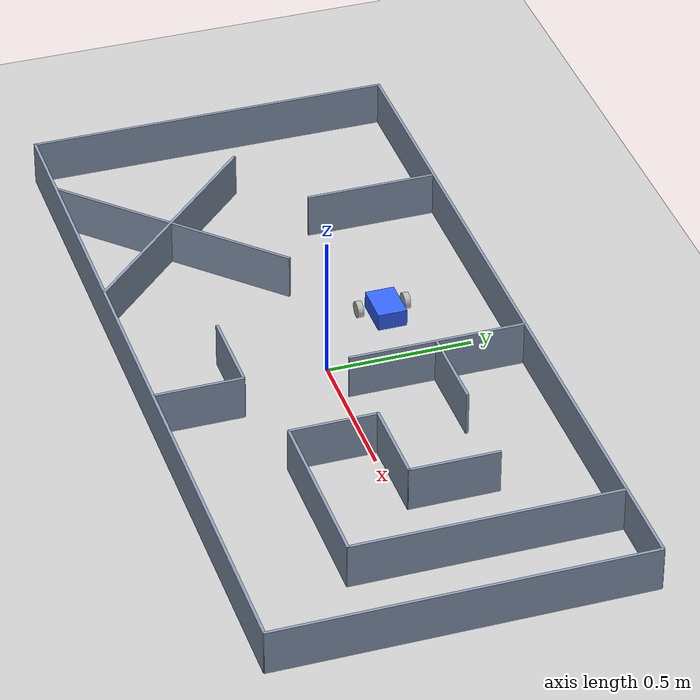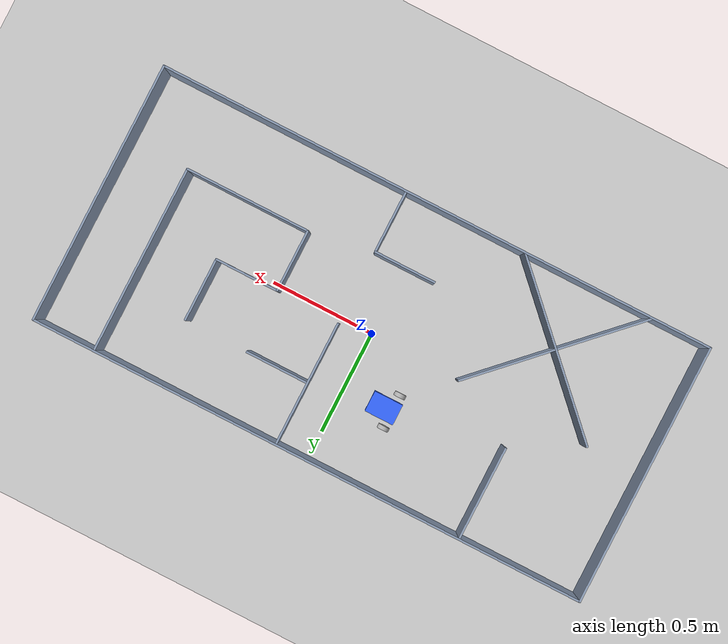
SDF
<sdf version="1.6">
  <world name="map_260905">
    <plugin filename="gz-sim-physics-system" name="gz::sim::systems::Physics" />
    <plugin filename="gz-sim-user-commands-system" name="gz::sim::systems::UserCommands" />
    <plugin filename="gz-sim-scene-broadcaster-system" name="gz::sim::systems::SceneBroadcaster" />
    <plugin filename="gz-sim-sensors-system" name="gz::sim::systems::Sensors">
      <render_engine>ogre2</render_engine>
    </plugin>
    <plugin filename="gz-sim-imu-system" name="gz::sim::systems::Imu" />

    <light type="directional" name="sun">
      <cast_shadows>false</cast_shadows>
      <pose>0 0 10 0 0 0</pose>
      <diffuse>0.9 0.9 0.9 1</diffuse>
      <specular>0.2 0.2 0.2 1</specular>
      <direction>-0.4 0.2 -0.9</direction>
    </light>

    <model name="ground_plane">
      <static>true</static>
      <link name="link">
        <collision name="collision">
          <geometry><plane><normal>0 0 1</normal><size>100 100</size></plane></geometry>
        </collision>
        <visual name="visual">
          <geometry><plane><normal>0 0 1</normal><size>100 100</size></plane></geometry>
          <material>
            <ambient>0.8 0.8 0.8 1</ambient><diffuse>0.8 0.8 0.8 1</diffuse>
            <specular>0.8 0.8 0.8 1</specular>
          </material>
        </visual>
      </link>
    </model>

    <model name="track_260905">
      <static>true</static>
      <pose>0 0 0 0 0 0</pose>
      <link name="link">
        <collision name="wall_00_col">
          <pose>-1.35250 0.00000 0.07750 0 0 0.0000000</pose>
          <geometry><box><size>0.01000 1.26000 0.15500</size></box></geometry>
          <surface><friction><ode><mu>0.9</mu><mu2>0.9</mu2></ode></friction></surface>
        </collision>
        <visual name="wall_00_vis">
          <pose>-1.35250 0.00000 0.07750 0 0 0.0000000</pose>
          <geometry><box><size>0.01000 1.26000 0.15500</size></box></geometry>
          <material>
            <ambient>0.30 0.35 0.45 1</ambient>
            <diffuse>0.55 0.62 0.72 1</diffuse>
            <specular>0.1 0.1 0.1 1</specular>
          </material>
        </visual>
        <collision name="wall_01_col">
          <pose>1.35250 0.00000 0.07750 0 0 0.0000000</pose>
          <geometry><box><size>0.01000 1.26000 0.15500</size></box></geometry>
          <surface><friction><ode><mu>0.9</mu><mu2>0.9</mu2></ode></friction></surface>
        </collision>
        <visual name="wall_01_vis">
          <pose>1.35250 0.00000 0.07750 0 0 0.0000000</pose>
          <geometry><box><size>0.01000 1.26000 0.15500</size></box></geometry>
          <material>
            <ambient>0.30 0.35 0.45 1</ambient>
            <diffuse>0.55 0.62 0.72 1</diffuse>
            <specular>0.1 0.1 0.1 1</specular>
          </material>
        </visual>
        <collision name="wall_02_col">
          <pose>0.00000 -0.62750 0.07750 0 0 0.0000000</pose>
          <geometry><box><size>2.71000 0.01000 0.15500</size></box></geometry>
          <surface><friction><ode><mu>0.9</mu><mu2>0.9</mu2></ode></friction></surface>
        </collision>
        <visual name="wall_02_vis">
          <pose>0.00000 -0.62750 0.07750 0 0 0.0000000</pose>
          <geometry><box><size>2.71000 0.01000 0.15500</size></box></geometry>
          <material>
            <ambient>0.30 0.35 0.45 1</ambient>
            <diffuse>0.55 0.62 0.72 1</diffuse>
            <specular>0.1 0.1 0.1 1</specular>
          </material>
        </visual>
        <collision name="wall_03_col">
          <pose>0.00000 0.62750 0.07750 0 0 0.0000000</pose>
          <geometry><box><size>2.71000 0.01000 0.15500</size></box></geometry>
          <surface><friction><ode><mu>0.9</mu><mu2>0.9</mu2></ode></friction></surface>
        </collision>
        <visual name="wall_03_vis">
          <pose>0.00000 0.62750 0.07750 0 0 0.0000000</pose>
          <geometry><box><size>2.71000 0.01000 0.15500</size></box></geometry>
          <material>
            <ambient>0.30 0.35 0.45 1</ambient>
            <diffuse>0.55 0.62 0.72 1</diffuse>
            <specular>0.1 0.1 0.1 1</specular>
          </material>
        </visual>
        <collision name="wall_04_col">
          <pose>-0.75435 0.39995 0.07750 0 0 0.0000000</pose>
          <geometry><box><size>0.01000 0.45000 0.15500</size></box></geometry>
          <surface><friction><ode><mu>0.9</mu><mu2>0.9</mu2></ode></friction></surface>
        </collision>
        <visual name="wall_04_vis">
          <pose>-0.75435 0.39995 0.07750 0 0 0.0000000</pose>
          <geometry><box><size>0.01000 0.45000 0.15500</size></box></geometry>
          <material>
            <ambient>0.30 0.35 0.45 1</ambient>
            <diffuse>0.55 0.62 0.72 1</diffuse>
            <specular>0.1 0.1 0.1 1</specular>
          </material>
        </visual>
        <collision name="wall_05_col">
          <pose>0.00495 -0.32745 0.07750 0 0 0.0000000</pose>
          <geometry><box><size>0.30000 0.01000 0.15500</size></box></geometry>
          <surface><friction><ode><mu>0.9</mu><mu2>0.9</mu2></ode></friction></surface>
        </collision>
        <visual name="wall_05_vis">
          <pose>0.00495 -0.32745 0.07750 0 0 0.0000000</pose>
          <geometry><box><size>0.30000 0.01000 0.15500</size></box></geometry>
          <material>
            <ambient>0.30 0.35 0.45 1</ambient>
            <diffuse>0.55 0.62 0.72 1</diffuse>
            <specular>0.1 0.1 0.1 1</specular>
          </material>
        </visual>
        <collision name="wall_06_col">
          <pose>0.15245 -0.47495 0.07750 0 0 0.0000000</pose>
          <geometry><box><size>0.01000 0.30000 0.15500</size></box></geometry>
          <surface><friction><ode><mu>0.9</mu><mu2>0.9</mu2></ode></friction></surface>
        </collision>
        <visual name="wall_06_vis">
          <pose>0.15245 -0.47495 0.07750 0 0 0.0000000</pose>
          <geometry><box><size>0.01000 0.30000 0.15500</size></box></geometry>
          <material>
            <ambient>0.30 0.35 0.45 1</ambient>
            <diffuse>0.55 0.62 0.72 1</diffuse>
            <specular>0.1 0.1 0.1 1</specular>
          </material>
        </visual>
        <collision name="wall_07_col">
          <pose>0.15245 0.32495 0.07750 0 0 0.0000000</pose>
          <geometry><box><size>0.01000 0.60000 0.15500</size></box></geometry>
          <surface><friction><ode><mu>0.9</mu><mu2>0.9</mu2></ode></friction></surface>
        </collision>
        <visual name="wall_07_vis">
          <pose>0.15245 0.32495 0.07750 0 0 0.0000000</pose>
          <geometry><box><size>0.01000 0.60000 0.15500</size></box></geometry>
          <material>
            <ambient>0.30 0.35 0.45 1</ambient>
            <diffuse>0.55 0.62 0.72 1</diffuse>
            <specular>0.1 0.1 0.1 1</specular>
          </material>
        </visual>
        <collision name="wall_08_col">
          <pose>0.30495 0.32245 0.07750 0 0 0.0000000</pose>
          <geometry><box><size>0.30000 0.01000 0.15500</size></box></geometry>
          <surface><friction><ode><mu>0.9</mu><mu2>0.9</mu2></ode></friction></surface>
        </collision>
        <visual name="wall_08_vis">
          <pose>0.30495 0.32245 0.07750 0 0 0.0000000</pose>
          <geometry><box><size>0.30000 0.01000 0.15500</size></box></geometry>
          <material>
            <ambient>0.30 0.35 0.45 1</ambient>
            <diffuse>0.55 0.62 0.72 1</diffuse>
            <specular>0.1 0.1 0.1 1</specular>
          </material>
        </visual>
        <collision name="wall_09_col">
          <pose>0.45745 -0.12500 0.07750 0 0 0.0000000</pose>
          <geometry><box><size>0.01000 0.29990 0.15500</size></box></geometry>
          <surface><friction><ode><mu>0.9</mu><mu2>0.9</mu2></ode></friction></surface>
        </collision>
        <visual name="wall_09_vis">
          <pose>0.45745 -0.12500 0.07750 0 0 0.0000000</pose>
          <geometry><box><size>0.01000 0.29990 0.15500</size></box></geometry>
          <material>
            <ambient>0.30 0.35 0.45 1</ambient>
            <diffuse>0.55 0.62 0.72 1</diffuse>
            <specular>0.1 0.1 0.1 1</specular>
          </material>
        </visual>
        <collision name="wall_10_col">
          <pose>0.60750 0.02245 0.07750 0 0 0.0000000</pose>
          <geometry><box><size>0.30510 0.01000 0.15500</size></box></geometry>
          <surface><friction><ode><mu>0.9</mu><mu2>0.9</mu2></ode></friction></surface>
        </collision>
        <visual name="wall_10_vis">
          <pose>0.60750 0.02245 0.07750 0 0 0.0000000</pose>
          <geometry><box><size>0.30510 0.01000 0.15500</size></box></geometry>
          <material>
            <ambient>0.30 0.35 0.45 1</ambient>
            <diffuse>0.55 0.62 0.72 1</diffuse>
            <specular>0.1 0.1 0.1 1</specular>
          </material>
        </visual>
        <collision name="wall_11_col">
          <pose>0.75500 -0.27245 0.07750 0 0 0.0000000</pose>
          <geometry><box><size>0.60010 0.01000 0.15500</size></box></geometry>
          <surface><friction><ode><mu>0.9</mu><mu2>0.9</mu2></ode></friction></surface>
        </collision>
        <visual name="wall_11_vis">
          <pose>0.75500 -0.27245 0.07750 0 0 0.0000000</pose>
          <geometry><box><size>0.60010 0.01000 0.15500</size></box></geometry>
          <material>
            <ambient>0.30 0.35 0.45 1</ambient>
            <diffuse>0.55 0.62 0.72 1</diffuse>
            <specular>0.1 0.1 0.1 1</specular>
          </material>
        </visual>
        <collision name="wall_12_col">
          <pose>0.75755 0.17245 0.07750 0 0 0.0000000</pose>
          <geometry><box><size>0.01000 0.30500 0.15500</size></box></geometry>
          <surface><friction><ode><mu>0.9</mu><mu2>0.9</mu2></ode></friction></surface>
        </collision>
        <visual name="wall_12_vis">
          <pose>0.75755 0.17245 0.07750 0 0 0.0000000</pose>
          <geometry><box><size>0.01000 0.30500 0.15500</size></box></geometry>
          <material>
            <ambient>0.30 0.35 0.45 1</ambient>
            <diffuse>0.55 0.62 0.72 1</diffuse>
            <specular>0.1 0.1 0.1 1</specular>
          </material>
        </visual>
        <collision name="wall_13_col">
          <pose>1.05255 0.17500 0.07750 0 0 0.0000000</pose>
          <geometry><box><size>0.01000 0.89990 0.15500</size></box></geometry>
          <surface><friction><ode><mu>0.9</mu><mu2>0.9</mu2></ode></friction></surface>
        </collision>
        <visual name="wall_13_vis">
          <pose>1.05255 0.17500 0.07750 0 0 0.0000000</pose>
          <geometry><box><size>0.01000 0.89990 0.15500</size></box></geometry>
          <material>
            <ambient>0.30 0.35 0.45 1</ambient>
            <diffuse>0.55 0.62 0.72 1</diffuse>
            <specular>0.1 0.1 0.1 1</specular>
          </material>
        </visual>
        <collision name="diag_0_col">
          <pose>-0.75357 -0.30857 0.07750 0 0 -0.7853982</pose>
          <geometry><box><size>0.90000 0.01000 0.15500</size></box></geometry>
          <surface><friction><ode><mu>0.9</mu><mu2>0.9</mu2></ode></friction></surface>
        </collision>
        <visual name="diag_0_vis">
          <pose>-0.75357 -0.30857 0.07750 0 0 -0.7853982</pose>
          <geometry><box><size>0.90000 0.01000 0.15500</size></box></geometry>
          <material>
            <ambient>0.30 0.35 0.45 1</ambient>
            <diffuse>0.55 0.62 0.72 1</diffuse>
            <specular>0.1 0.1 0.1 1</specular>
          </material>
        </visual>
        <collision name="diag_1_col">
          <pose>-0.75003 -0.30857 0.07750 0 0 0.7853982</pose>
          <geometry><box><size>0.90000 0.01000 0.15500</size></box></geometry>
          <surface><friction><ode><mu>0.9</mu><mu2>0.9</mu2></ode></friction></surface>
        </collision>
        <visual name="diag_1_vis">
          <pose>-0.75003 -0.30857 0.07750 0 0 0.7853982</pose>
          <geometry><box><size>0.90000 0.01000 0.15500</size></box></geometry>
          <material>
            <ambient>0.30 0.35 0.45 1</ambient>
            <diffuse>0.55 0.62 0.72 1</diffuse>
            <specular>0.1 0.1 0.1 1</specular>
          </material>
        </visual>
      </link>
    </model>

    <scene><shadows>false</shadows></scene>

    <gui fullscreen="0">
      <camera name="user_camera">
        <pose>0 -2.9 2.9 0 0.78 1.5707963</pose>
        <view_controller>orbit</view_controller>
        <projection_type>perspective</projection_type>
      </camera>
    </gui>

    <physics type="ode">
      <real_time_update_rate>1000.0</real_time_update_rate>
      <max_step_size>0.001</max_step_size>
      <real_time_factor>1</real_time_factor>
    </physics>
  <model name="pinky"><pose>-0.19999999999999907 0.2700000000000007 .01 0 0 0</pose><link name="base"><inertial><pose>-0.055 0 0.04 0 0 0</pose><mass>0.6</mass><inertia><ixx>0.001</ixx><iyy>0.001</iyy><izz>0.001</izz><ixy>0.0</ixy><ixz>0.0</ixz><iyz>0.0</iyz></inertia></inertial><collision name="col"><pose>0 0 0.04 0 0 0</pose><geometry><box><size>0.14 0.1 0.06</size></box></geometry></collision><visual name="vis"><pose>0 0 0.04 0 0 0</pose><geometry><box><size>0.14 0.1 0.06</size></box></geometry><material><ambient>0.2 0.4 1 1</ambient></material></visual><collision name="skid_col"><pose>-0.065 0 0.0075 0 0 0</pose><geometry><box><size>0.015 0.06 0.015</size></box></geometry><surface><friction><ode><mu>0.02</mu><mu2>0.02</mu2></ode></friction></surface></collision><visual name="skid_vis"><pose>-0.065 0 0.0075 0 0 0</pose><geometry><box><size>0.015 0.06 0.015</size></box></geometry></visual><sensor name="lidar" type="gpu_lidar"><pose>0 0 0.10 0 0 0</pose><topic>lidar/scan</topic><update_rate>10</update_rate><always_on>1</always_on><visualize>0</visualize><lidar><scan><horizontal><samples>720</samples><resolution>1</resolution><min_angle>-3.141592653589793</min_angle><max_angle>3.1328660073298216</max_angle></horizontal></scan><range><min>0.02</min><max>8.0</max><resolution>0.01</resolution></range></lidar></sensor></link><link name="wheel_left"><pose>-0.04 0.082 0.028 -1.5707 0 0</pose><inertial><mass>0.1</mass><inertia><ixx>0.0001</ixx><iyy>0.0001</iyy><izz>0.0001</izz><ixy>0.0</ixy><ixz>0.0</ixz><iyz>0.0</iyz></inertia></inertial><collision name="col"><geometry><cylinder><radius>0.028</radius><length>0.02</length></cylinder></geometry><surface><contact><ode><kp>10000000.0</kp><kd>1.0</kd><max_vel>0.1</max_vel></ode></contact><friction><ode><mu>2.0</mu><mu2>1.0</mu2></ode></friction></surface></collision><visual name="vis"><geometry><cylinder><radius>0.028</radius><length>0.02</length></cylinder></geometry></visual></link><link name="wheel_right"><pose>-0.04 -0.082 0.028 -1.5707 0 0</pose><inertial><mass>0.1</mass><inertia><ixx>0.0001</ixx><iyy>0.0001</iyy><izz>0.0001</izz><ixy>0.0</ixy><ixz>0.0</ixz><iyz>0.0</iyz></inertia></inertial><collision name="col"><geometry><cylinder><radius>0.028</radius><length>0.02</length></cylinder></geometry><surface><contact><ode><kp>10000000.0</kp><kd>1.0</kd><max_vel>0.1</max_vel></ode></contact><friction><ode><mu>2.0</mu><mu2>1.0</mu2></ode></friction></surface></collision><visual name="vis"><geometry><cylinder><radius>0.028</radius><length>0.02</length></cylinder></geometry></visual></link><joint name="j_left" type="revolute"><parent>base</parent><child>wheel_left</child><axis><xyz>0 0 1</xyz></axis></joint><joint name="j_right" type="revolute"><parent>base</parent><child>wheel_right</child><axis><xyz>0 0 1</xyz></axis></joint><plugin filename="gz-sim-diff-drive-system" name="gz::sim::systems::DiffDrive"><left_joint>j_left</left_joint><right_joint>j_right</right_joint><wheel_separation>0.164</wheel_separation><wheel_radius>0.028</wheel_radius><odom_publish_frequency>20</odom_publish_frequency><odom_topic>odometry_diff</odom_topic><frame_id>odom</frame_id><child_frame_id>base_link</child_frame_id></plugin><plugin filename="gz-sim-odometry-publisher-system" name="gz::sim::systems::OdometryPublisher"><dimensions>2</dimensions><odom_topic>odometry_gt</odom_topic><odom_publish_frequency>20</odom_publish_frequency></plugin></model><physics name="track_physics" type="ode"><max_step_size>.005</max_step_size><real_time_factor>1</real_time_factor></physics></world>
</sdf>
